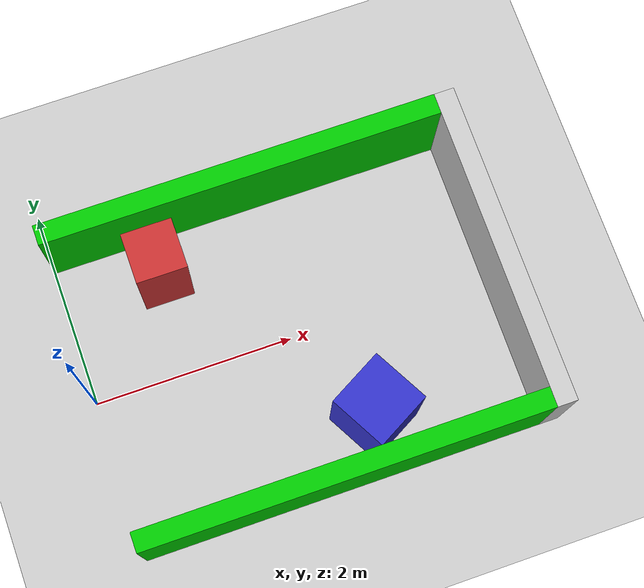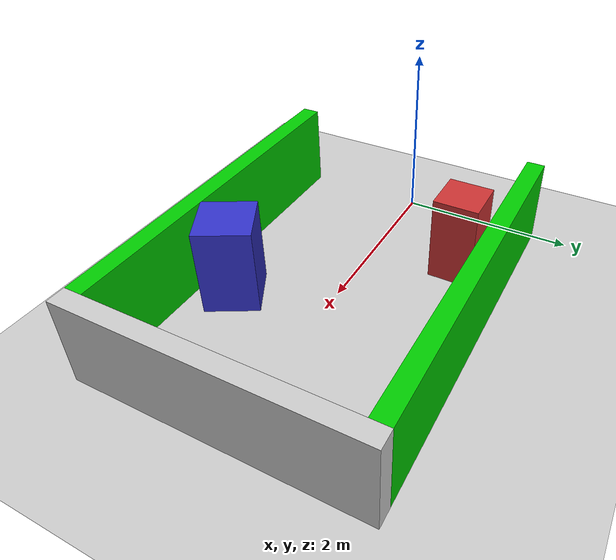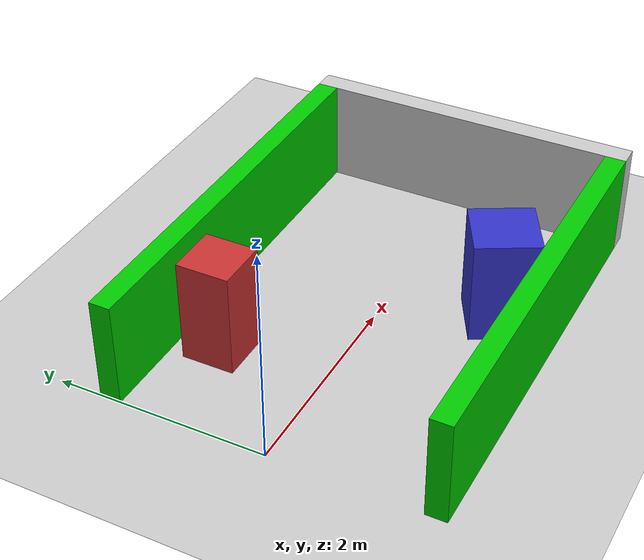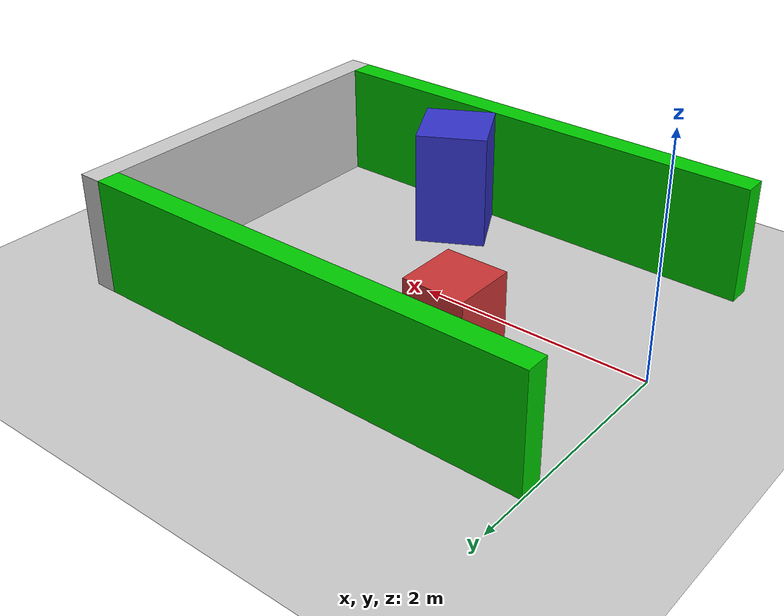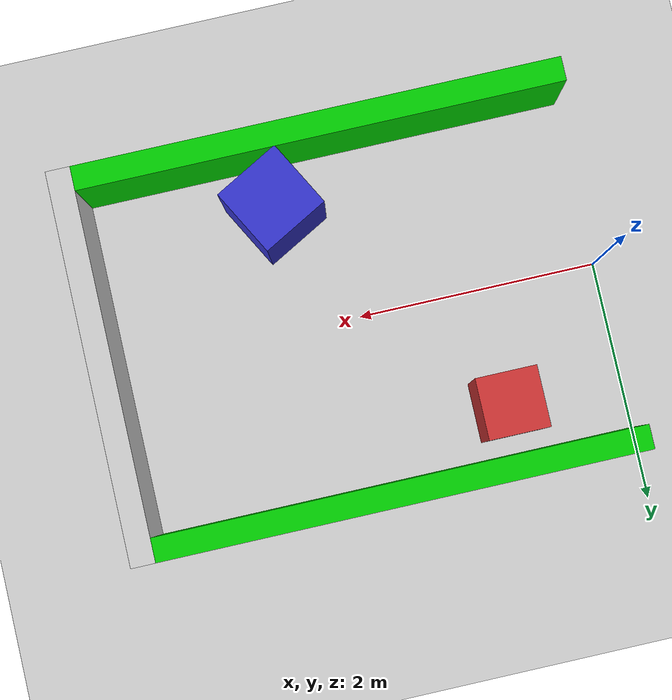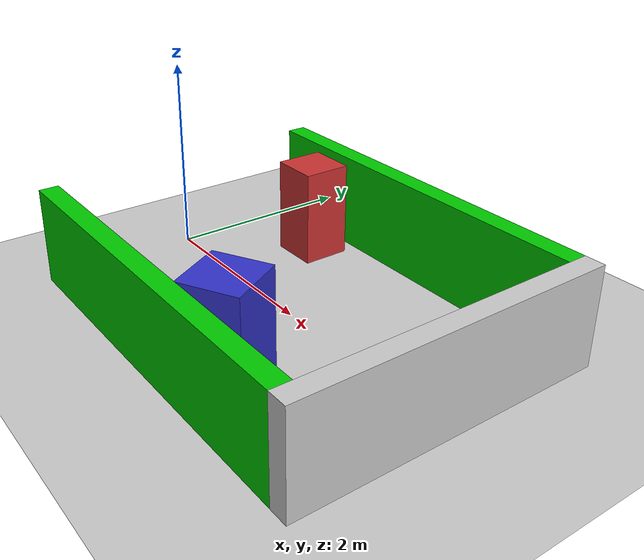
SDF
<?xml version="1.0" ?>
<sdf version="1.8">
  <world name="greenhouse_world">
    <physics name="1ms" type="ignored">
      <max_step_size>0.001</max_step_size>
      <real_time_factor>1.0</real_time_factor>
    </physics>

    <plugin filename="gz-sim-physics-system" name="gz::sim::systems::Physics"/>
    <plugin filename="gz-sim-sensors-system" name="gz::sim::systems::Sensors">
      <render_engine>ogre2</render_engine>
    </plugin>
    <plugin filename="gz-sim-user-commands-system" name="gz::sim::systems::UserCommands"/>
    <plugin filename="gz-sim-scene-broadcaster-system" name="gz::sim::systems::SceneBroadcaster"/>

    <light type="directional" name="sun">
      <cast_shadows>false</cast_shadows>
      <pose>0 0 10 0 0 0</pose>
      <diffuse>0.8 0.8 0.8 1</diffuse>
      <specular>0.2 0.2 0.2 1</specular>
      <attenuation>
        <range>1000</range>
        <constant>0.9</constant>
        <linear>0.01</linear>
        <quadratic>0.001</quadratic>
      </attenuation>
      <direction>-0.5 0.1 -0.9</direction>
    </light>

    <model name="ground_plane">
      <static>true</static>
      <link name="link">
        <collision name="collision">
          <geometry>
            <plane>
              <normal>0 0 1</normal>
              <size>100 100</size>
            </plane>
          </geometry>
          <surface>
            <friction>
              <ode>
                <mu>100</mu>
                <mu2>50</mu2>
              </ode>
            </friction>
          </surface>
        </collision>
        <visual name="visual">
          <geometry>
            <plane>
              <normal>0 0 1</normal>
              <size>100 100</size>
            </plane>
          </geometry>
          <material>
            <ambient>0.8 0.8 0.8 1</ambient>
            <diffuse>0.8 0.8 0.8 1</diffuse>
            <specular>0.8 0.8 0.8 1</specular>
          </material>
        </visual>
      </link>
    </model>

    <!-- Greenhouse Walls (Crop Rows) -->
    <!-- Row 1 -->
    <model name="row_1">
      <static>true</static>
      <pose>2 1.5 0.5 0 0 0</pose>
      <link name="link">
        <collision name="collision">
          <geometry><box><size>4 0.2 1</size></box></geometry>
        </collision>
        <visual name="visual">
          <geometry><box><size>4 0.2 1</size></box></geometry>
          <material><ambient>0 0.8 0 1</ambient><diffuse>0 0.8 0 1</diffuse></material>
        </visual>
      </link>
    </model>

    <!-- Row 2 -->
    <model name="row_2">
      <static>true</static>
      <pose>2 -1.5 0.5 0 0 0</pose>
      <link name="link">
        <collision name="collision">
          <geometry><box><size>4 0.2 1</size></box></geometry>
        </collision>
        <visual name="visual">
          <geometry><box><size>4 0.2 1</size></box></geometry>
          <material><ambient>0 0.8 0 1</ambient><diffuse>0 0.8 0 1</diffuse></material>
        </visual>
      </link>
    </model>

    <!-- Back Wall -->
    <model name="back_wall">
      <static>true</static>
      <pose>4.1 0 0.5 0 0 0</pose>
      <link name="link">
        <collision name="collision">
          <geometry><box><size>0.2 3.2 1</size></box></geometry>
        </collision>
        <visual name="visual">
          <geometry><box><size>0.2 3.2 1</size></box></geometry>
          <material><ambient>0.8 0.8 0.8 1</ambient><diffuse>0.8 0.8 0.8 1</diffuse></material>
        </visual>
      </link>
    </model>

    <!-- Obstacle 1 to help SLAM Scan Matching -->
    <model name="obstacle_1">
      <static>true</static>
      <pose>1.0 1.0 0.5 0 0 0</pose>
      <link name="link">
        <collision name="collision">
          <geometry><box><size>0.5 0.5 1</size></box></geometry>
        </collision>
        <visual name="visual">
          <geometry><box><size>0.5 0.5 1</size></box></geometry>
          <material><ambient>0.8 0.2 0.2 1</ambient><diffuse>0.8 0.2 0.2 1</diffuse></material>
        </visual>
      </link>
    </model>

    <!-- Obstacle 2 to help SLAM Scan Matching -->
    <model name="obstacle_2">
      <static>true</static>
      <pose>2.5 -1.0 0.5 0 0 0.5</pose>
      <link name="link">
        <collision name="collision">
          <geometry><box><size>0.6 0.6 1</size></box></geometry>
        </collision>
        <visual name="visual">
          <geometry><box><size>0.6 0.6 1</size></box></geometry>
          <material><ambient>0.2 0.2 0.8 1</ambient><diffuse>0.2 0.2 0.8 1</diffuse></material>
        </visual>
      </link>
    </model>

  </world>
</sdf>
